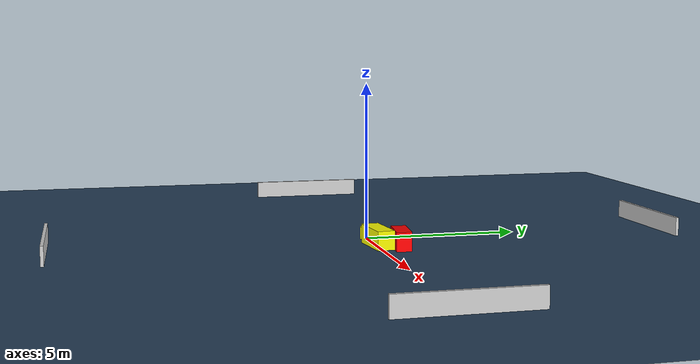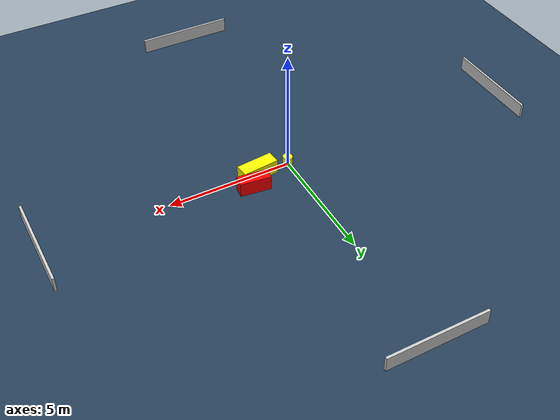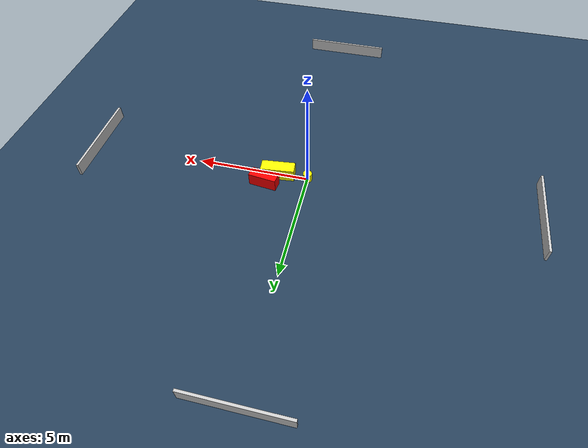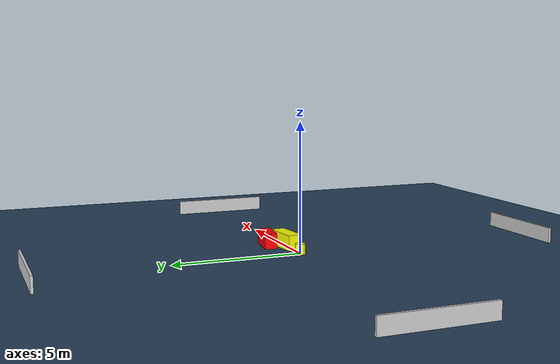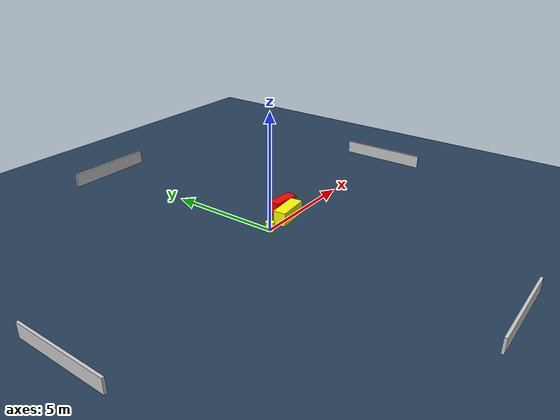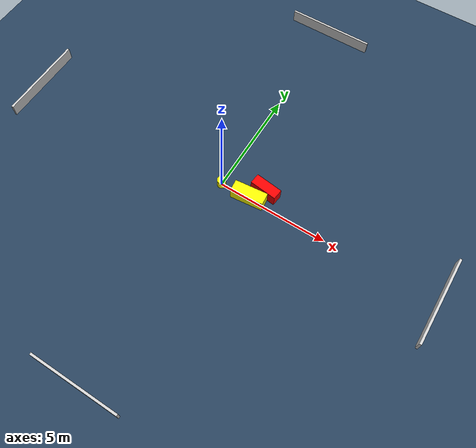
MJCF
<?xml version="1.0" ?>
<mujoco model="generated_environment">
  <option timestep="0.01" integrator="RK4" cone="elliptic"/>
  <default>
    <geom density="1"/>
  </default>
  <asset>
    <texture builtin="gradient" height="3072" name="skybox" rgb1="0.3 0.5 0.7" rgb2="0 0 0" type="skybox" width="512"/>
    <texture builtin="checker" height="300" name="groundplane" rgb1="0.2 0.3 0.4" rgb2="0.1 0.2 0.3" type="2d" width="300"/>
    <material name="groundplane" reflectance="0.2" texrepeat="5 5" texture="groundplane"/>
  </asset>
  <worldbody>
    <light dir="0 0 -1" directional="true" pos="0 0 1.5"/>
    <geom condim="3" friction="0.5 0.005 0.001" material="groundplane" name="floor" pos="0 0 0" size="0 0 0.05" type="plane"/>
    <body name="walls">
      <geom name="wall_1" condim="4" pos="-10.0 0.0 0.3" rgba="0.800000011920929 0.800000011920929 0.800000011920929 1.0" size="0.05 2.0 0.3" type="box"/>
      <geom name="wall_2" condim="4" pos="10.0 0.0 0.3" rgba="0.800000011920929 0.800000011920929 0.800000011920929 1.0" size="0.05 2.0 0.3" type="box"/>
      <geom name="wall_3" condim="4" pos="0.0 -10.0 0.3" rgba="0.800000011920929 0.800000011920929 0.800000011920929 1.0" size="2.0 0.05 0.3" type="box"/>
      <geom name="wall_4" condim="4" pos="0.0 10.0 0.3" rgba="0.800000011920929 0.800000011920929 0.800000011920929 1.0" size="2.0 0.05 0.3" type="box"/>
    </body>
    <body name="robot">
      <joint name="joint_x" type="slide" pos="0 0 0" axis="1 0 0"/>
      <joint name="joint_y" type="slide" pos="0 0 0" axis="0 1 0"/>
      <geom name="robot" type="cylinder" pos="0.0 0.0 0.2" size="0.2 0.2 0.0" mass="5.0" friction="1.0 0.005 0.0001" condim="4" rgba="1.0 1.0 0.0 1.0"/>
    </body>
    <body name="obstacle_1_movable">
      <geom name="obstacle_1_movable" condim="4" pos="1.335574381232103 0.03647345163832499 0.3" euler="0 0 185.6461496621315" friction="0.0 0.005 0.001" rgba="1.0 1.0 0.0 1.0" size="0.7456576025791677 0.2761385288402119 0.3" type="box" mass="0.1"/>
      <joint type="free"/>
    </body>
    <body name="obstacle_2_static">
      <geom name="obstacle_2_static" condim="4" pos="1.8082495145156412 0.6542192807318186 0.3" euler="0 0 173.07887063189548" friction="0.0 0.005 0.001" rgba="1.0 0.0 0.0 1.0" size="0.6184189207354043 0.2379762464387692 0.3" type="box"/>
    </body>
  </worldbody>
  <actuator>
    <motor name="actuator_x" joint="joint_x" gear="1" ctrlrange="-1 1"/>
    <motor name="actuator_y" joint="joint_y" gear="1" ctrlrange="-1 1"/>
  </actuator>
</mujoco>
